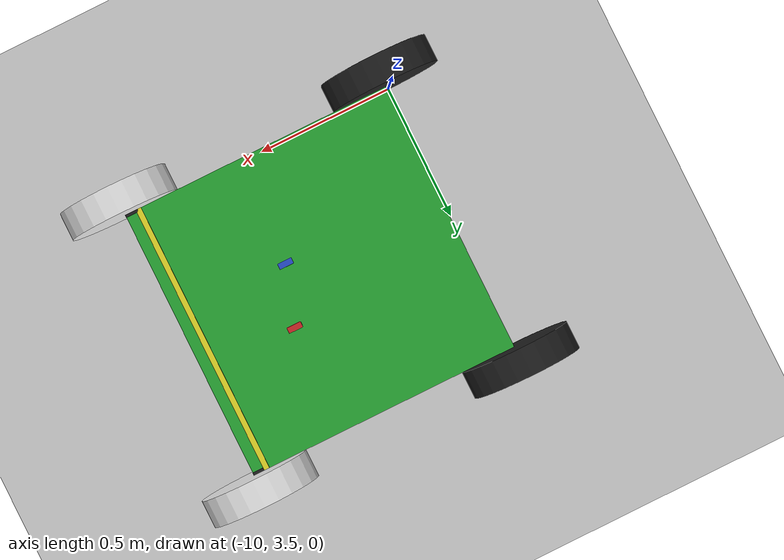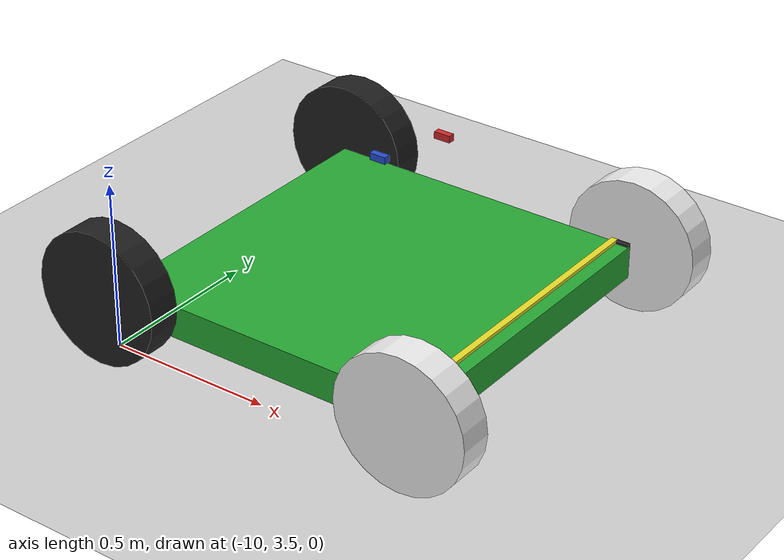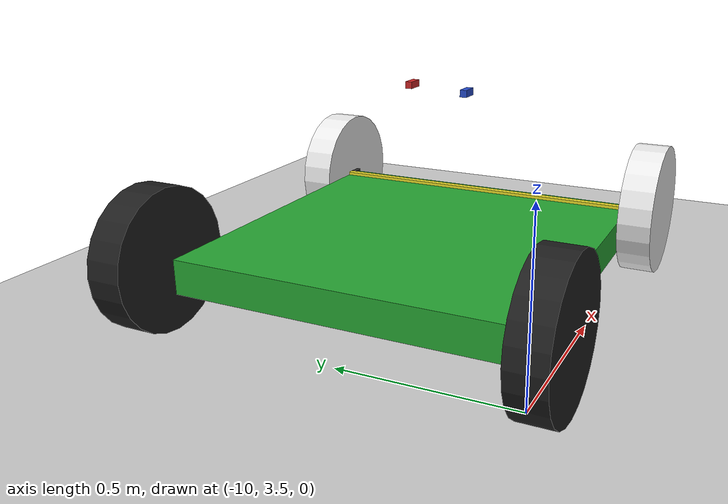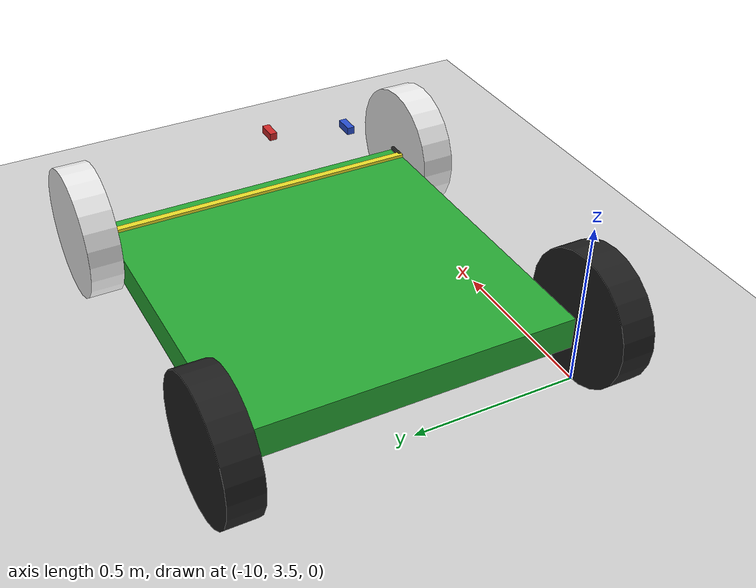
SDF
<sdf version="1.4">
 <world name="cart_demo">
  <physics type="ode">
   <gravity>0 0 -9.8</gravity>
   <max_step_size>0.001</max_step_size>
   <real_time_factor>10</real_time_factor>
   <real_time_update_rate>1000</real_time_update_rate>
   <ode>
    <solver><type>quick</type><iters>50</iters><sor>1.3</sor></solver>
    <constraints>
     <cfm>0</cfm>
     <erp>0.2</erp>
     <contact_max_correcting_vel>100</contact_max_correcting_vel>
     <contact_surface_layer>0.001</contact_surface_layer>
    </constraints>
   </ode>
   <max_step_size>0.001</max_step_size>
  </physics>
  <light name="sun" type="directional">
   <pose>0 0 20 0 -0 0</pose>
   <diffuse>0.8 0.8 0.8 1</diffuse>
   <specular>0.1 0.1 0.1 1</specular>
   <attenuation>
    <range>10</range>
    <linear>0.01</linear>
    <constant>0.8</constant>
    <quadratic>0</quadratic>
   </attenuation>
   <direction>0 0.5 -0.5</direction>
  </light>
  <model name="ground_plane">
   <static>1</static>
   <link name="link">
    <collision name="collision">
     <geometry><plane><normal>0 0 1</normal><size>100 100</size></plane></geometry>
     <surface><friction><ode><mu>100</mu><mu2>50</mu2></ode></friction></surface>
    </collision>
    <visual name="visual">
     <cast_shadows>0</cast_shadows>
     <geometry><plane><normal>0 0 1</normal><size>500 500</size></plane></geometry>
     <material>
      <script><uri>file://media/materials/scripts/gazebo.material</uri><name>Gazebo/Grey</name></script>
     </material>
    </visual>
    <velocity_decay><linear>0</linear><angular>0</angular></velocity_decay>
   </link>
  </model>
  <scene><ambient>0.4 0.4 0.4 1</ambient><background>0.7 0.7 0.7 1</background><shadows>1</shadows></scene>
  <spherical_coordinates>
   <surface_model>EARTH_WGS84</surface_model>
   <latitude_deg>0</latitude_deg>
   <longitude_deg>0</longitude_deg>
   <elevation>0</elevation>
   <heading_deg>0</heading_deg>
  </spherical_coordinates>
  <light name="sun_0" type="directional">
   <pose>13 -2 10 0 -0 0</pose>
   <diffuse>0.8 0.8 0.8 1</diffuse>
   <specular>0.2 0.2 0.2 1</specular>
   <attenuation>
    <range>1000</range>
    <constant>0.9</constant>
    <linear>0.01</linear>
    <quadratic>0.001</quadratic>
   </attenuation>
   <direction>-0.5 0.1 -0.9</direction>
  </light>
  <model name="test_model">
   <pose>-9.48238 4.00006 0.69999 -6e-06 6e-06 -0.00163</pose>
   <link name="link">
    <inertial>
     <inertia><ixx>1</ixx><ixy>0</ixy><ixz>0</ixz><iyy>1</iyy><iyz>0</iyz><izz>1</izz></inertia>
     <mass>600</mass>
    </inertial>
    <collision name="collision">
     <geometry><box><size>1 1 0.1</size></box></geometry>
     <surface>
      <friction><ode><mu>1</mu><mu2>1</mu2></ode></friction>
      <contact><ode><max_vel>100</max_vel></ode></contact>
     </surface>
    </collision>
    <visual name="visual">
     <pose>0 0 -0.55 0 -0 0</pose>
     <geometry><box><size>1 1 0.1</size></box></geometry>
     <material>
      <script><uri>file://media/materials/scripts/gazebo.material</uri><name>Gazebo/Green</name></script>
     </material>
    </visual>
    <velocity_decay><linear>0</linear><angular>0</angular></velocity_decay>
   </link>
   <link name="bar_1">
    <pose>0.45 0 -0.5 0 -0 0</pose>
    <inertial>
     <inertia><ixx>0.001</ixx><ixy>0</ixy><ixz>0</ixz><iyy>0.001</iyy><iyz>0</iyz><izz>0.001</izz></inertia>
     <mass>0.1</mass>
    </inertial>
    <collision name="collision">
     <geometry><box><size>0.06 1 0.02</size></box></geometry>
     <surface>
      <friction><ode><mu>1</mu><mu2>1</mu2></ode></friction>
      <contact><ode><max_vel>100</max_vel></ode></contact>
     </surface>
    </collision>
    <visual name="visual">
     <geometry><box><size>0.02 1 0.02</size></box></geometry>
     <material>
      <script><uri>file://media/materials/scripts/gazebo.material</uri><name>Gazebo/Yellow</name></script>
     </material>
    </visual>
    <velocity_decay><linear>0</linear><angular>0</angular></velocity_decay>
   </link>
   <joint name="bar_12_joint" type="revolute">
    <parent>bar_2</parent>
    <child>bar_1</child>
    <pose>0 0.5 0 0 -0 0</pose>
    <axis><xyz>0 0 1</xyz><limit><lower>-1e+16</lower><upper>1e+16</upper></limit></axis>
   </joint>
   <joint name="bar_13_joint" type="revolute">
    <parent>bar_3</parent>
    <child>bar_1</child>
    <pose>0 -0.5 0 0 -0 0</pose>
    <axis><xyz>0 0 1</xyz><limit><lower>-1e+16</lower><upper>1e+16</upper></limit></axis>
   </joint>
   <link name="bar_2">
    <pose>0.5 0.5 -0.5 0 -0 0</pose>
    <inertial>
     <inertia><ixx>0.001</ixx><ixy>0</ixy><ixz>0</ixz><iyy>0.001</iyy><iyz>0</iyz><izz>0.001</izz></inertia>
     <mass>0.1</mass>
    </inertial>
    <collision name="collision">
     <pose>-0.025 0 0 0 -0 0</pose>
     <geometry><box><size>0.08 0.05 0.05</size></box></geometry>
     <surface>
      <friction><ode><mu>1</mu><mu2>1</mu2></ode></friction>
      <contact><ode><max_vel>100</max_vel></ode></contact>
     </surface>
    </collision>
    <visual name="visual">
     <pose>-0.025 0 0 0 -0 0</pose>
     <geometry><box><size>0.05 0.02 0.02</size></box></geometry>
     <material>
      <script><uri>file://media/materials/scripts/gazebo.material</uri><name>Gazebo/Black</name></script>
     </material>
    </visual>
    <velocity_decay><linear>0</linear><angular>0</angular></velocity_decay>
   </link>
   <joint name="bar_2_joint" type="revolute">
    <parent>link</parent>
    <child>bar_2</child>
    <axis><xyz>0 0 1</xyz><limit><lower>-7.853</lower><upper>7.853</upper></limit></axis>
   </joint>
   <link name="bar_3">
    <pose>0.5 -0.5 -0.5 0 -0 0</pose>
    <inertial>
     <inertia><ixx>0.001</ixx><ixy>0</ixy><ixz>0</ixz><iyy>0.001</iyy><iyz>0</iyz><izz>0.001</izz></inertia>
     <mass>0.1</mass>
    </inertial>
    <collision name="collision">
     <pose>-0.025 0 0 0 -0 0</pose>
     <geometry><box><size>0.05 0.02 0.02</size></box></geometry>
     <surface>
      <friction><ode><mu>1</mu><mu2>1</mu2></ode></friction>
      <contact><ode><max_vel>100</max_vel></ode></contact>
     </surface>
    </collision>
    <visual name="visual">
     <pose>-0.025 0 0 0 -0 0</pose>
     <geometry><box><size>0.05 0.02 0.02</size></box></geometry>
     <material>
      <script><uri>file://media/materials/scripts/gazebo.material</uri><name>Gazebo/Black</name></script>
     </material>
    </visual>
    <velocity_decay><linear>0</linear><angular>0</angular></velocity_decay>
   </link>
   <joint name="bar_3_joint" type="revolute">
    <parent>link</parent>
    <child>bar_3</child>
    <axis><xyz>0 0 1</xyz><limit><lower>-1e+16</lower><upper>1e+16</upper></limit></axis>
   </joint>
   <link name="wheel_1">
    <pose>0.5 0.55 -0.5 1.5708 -0 0</pose>
    <inertial>
     <inertia><ixx>0.01</ixx><ixy>0</ixy><ixz>0</ixz><iyy>0.01</iyy><iyz>0</iyz><izz>0.01</izz></inertia>
     <mass>100</mass>
    </inertial>
    <collision name="collision">
     <geometry><cylinder><radius>0.2</radius><length>0.1</length></cylinder></geometry>
     <surface>
      <friction><ode><fdir1>1 0 0</fdir1><mu>1</mu><mu2>1</mu2></ode></friction>
      <contact><ode><max_vel>100</max_vel></ode></contact>
     </surface>
    </collision>
    <visual name="visual">
     <geometry><cylinder><radius>0.2</radius><length>0.1</length></cylinder></geometry>
     <material>
      <script><uri>file://media/materials/scripts/gazebo.material</uri><name>Gazebo/White</name></script>
     </material>
    </visual>
    <velocity_decay><linear>0</linear><angular>0</angular></velocity_decay>
   </link>
   <joint name="wheel_1_joint" type="revolute">
    <parent>bar_2</parent>
    <child>wheel_1</child>
    <axis><xyz>0 1 0</xyz><limit><lower>-1e+16</lower><upper>1e+16</upper></limit></axis>
   </joint>
   <link name="wheel_2">
    <pose>0.5 -0.55 -0.5 1.5708 -0 0</pose>
    <inertial>
     <inertia><ixx>0.01</ixx><ixy>0</ixy><ixz>0</ixz><iyy>0.01</iyy><iyz>0</iyz><izz>0.01</izz></inertia>
     <mass>100</mass>
    </inertial>
    <collision name="collision">
     <geometry><cylinder><radius>0.2</radius><length>0.1</length></cylinder></geometry>
     <surface>
      <friction><ode><fdir1>1 0 0</fdir1><mu>1</mu><mu2>1</mu2></ode></friction>
      <contact><ode><max_vel>100</max_vel></ode></contact>
     </surface>
    </collision>
    <visual name="visual">
     <geometry><cylinder><radius>0.2</radius><length>0.1</length></cylinder></geometry>
     <material>
      <script><uri>file://media/materials/scripts/gazebo.material</uri><name>Gazebo/White</name></script>
     </material>
    </visual>
    <velocity_decay><linear>0</linear><angular>0</angular></velocity_decay>
   </link>
   <joint name="wheel_2_joint" type="revolute">
    <parent>bar_3</parent>
    <child>wheel_2</child>
    <axis><xyz>0 1 0</xyz><limit><lower>-1e+16</lower><upper>1e+16</upper></limit></axis>
   </joint>
   <link name="wheel_3">
    <pose>-0.5 0.55 -0.5 1.5708 -0 0</pose>
    <inertial>
     <inertia><ixx>0.01</ixx><ixy>0</ixy><ixz>0</ixz><iyy>0.01</iyy><iyz>0</iyz><izz>0.01</izz></inertia>
     <mass>100</mass>
    </inertial>
    <collision name="collision">
     <geometry><cylinder><radius>0.2</radius><length>0.1</length></cylinder></geometry>
     <surface>
      <friction><ode><fdir1>1 0 0</fdir1><mu>1</mu><mu2>1</mu2></ode></friction>
      <contact><ode><max_vel>100</max_vel></ode></contact>
     </surface>
    </collision>
    <visual name="visual">
     <geometry><cylinder><radius>0.2</radius><length>0.1</length></cylinder></geometry>
     <material>
      <script><uri>file://media/materials/scripts/gazebo.material</uri><name>Gazebo/Black</name></script>
     </material>
    </visual>
    <velocity_decay><linear>0</linear><angular>0</angular></velocity_decay>
   </link>
   <joint name="wheel_3_joint" type="revolute">
    <parent>link</parent>
    <child>wheel_3</child>
    <axis>
     <dynamics><damping>0</damping><friction>0</friction></dynamics>
     <xyz>0 1 0</xyz>
     <limit><lower>-1e+16</lower><upper>1e+16</upper></limit>
    </axis>
   </joint>
   <link name="wheel_4">
    <pose>-0.5 -0.55 -0.5 1.5708 -0 0</pose>
    <inertial>
     <inertia><ixx>0.01</ixx><ixy>0</ixy><ixz>0</ixz><iyy>0.01</iyy><iyz>0</iyz><izz>0.01</izz></inertia>
     <mass>100</mass>
    </inertial>
    <collision name="collision">
     <geometry><cylinder><radius>0.2</radius><length>0.1</length></cylinder></geometry>
     <surface>
      <friction><ode><fdir1>1 0 0</fdir1><mu>1</mu><mu2>1</mu2></ode></friction>
      <contact><ode><max_vel>100</max_vel></ode></contact>
     </surface>
    </collision>
    <visual name="visual">
     <geometry><cylinder><radius>0.2</radius><length>0.1</length></cylinder></geometry>
     <material>
      <script><uri>file://media/materials/scripts/gazebo.material</uri><name>Gazebo/Black</name></script>
     </material>
    </visual>
    <velocity_decay><linear>0</linear><angular>0</angular></velocity_decay>
   </link>
   <joint name="wheel_4_joint" type="revolute">
    <parent>link</parent>
    <child>wheel_4</child>
    <axis>
     <dynamics><damping>0</damping><friction>0</friction></dynamics>
     <xyz>0 1 0</xyz>
     <limit><lower>-1e+16</lower><upper>1e+16</upper></limit>
    </axis>
   </joint>
   <link name="gas_pedal">
    <pose>0.1 -0.1 -0.1 0 -0 0</pose>
    <inertial>
     <inertia><ixx>0.001</ixx><ixy>0</ixy><ixz>0</ixz><iyy>0.001</iyy><iyz>0</iyz><izz>0.001</izz></inertia>
     <mass>0.1</mass>
    </inertial>
    <collision name="collision">
     <pose>0.04 0 0 0 -0 0</pose>
     <geometry><box><size>0.05 0.02 0.02</size></box></geometry>
     <surface>
      <friction><ode><mu>1</mu><mu2>1</mu2></ode></friction>
      <contact><ode><max_vel>100</max_vel></ode></contact>
     </surface>
    </collision>
    <visual name="visual">
     <pose>-0.025 0 0 0 -0 0</pose>
     <geometry><box><size>0.05 0.02 0.02</size></box></geometry>
     <material>
      <script><uri>file://media/materials/scripts/gazebo.material</uri><name>Gazebo/Blue</name></script>
     </material>
    </visual>
    <velocity_decay><linear>0</linear><angular>0</angular></velocity_decay>
   </link>
   <joint name="gas_joint" type="prismatic">
    <parent>link</parent>
    <child>gas_pedal</child>
    <axis><xyz>1 0 0</xyz><limit><lower>0</lower><upper>0.2</upper></limit></axis>
   </joint>
   <link name="brake_pedal">
    <pose>0.1 0.1 -0.1 0 -0 0</pose>
    <inertial>
     <inertia><ixx>0.001</ixx><ixy>0</ixy><ixz>0</ixz><iyy>0.001</iyy><iyz>0</iyz><izz>0.001</izz></inertia>
     <mass>0.1</mass>
    </inertial>
    <collision name="collision">
     <pose>0.04 0 0 0 -0 0</pose>
     <geometry><box><size>0.05 0.02 0.02</size></box></geometry>
     <surface>
      <friction><ode><mu>1</mu><mu2>1</mu2></ode></friction>
      <contact><ode><max_vel>100</max_vel></ode></contact>
     </surface>
    </collision>
    <visual name="visual">
     <pose>0.04 0 0 0 -0 0</pose>
     <geometry><box><size>0.05 0.02 0.02</size></box></geometry>
     <material>
      <script><uri>file://media/materials/scripts/gazebo.material</uri><name>Gazebo/Red</name></script>
     </material>
    </visual>
    <velocity_decay><linear>0</linear><angular>0</angular></velocity_decay>
   </link>
   <joint name="brake_joint" type="prismatic">
    <parent>link</parent>
    <child>brake_pedal</child>
    <axis><xyz>1 0 0</xyz><limit><lower>0</lower><upper>0.2</upper></limit></axis>
   </joint>
   <plugin name="cart_test_plugin" filename="libCartDemoPlugin.so">
    <steer>bar_2_joint</steer>
    <steer_pid>10 0.1 0.5</steer_pid>
    <steer_ilim>-10 10</steer_ilim>
    <steer_pos>0.0</steer_pos>
    <steer_vel>0</steer_vel>
    <steer_eff>100.0</steer_eff>
    <right>wheel_3_joint</right>
    <right_pid>0.1 0.0 0.001</right_pid>
    <right_ilim>-.1 .1</right_ilim>
    <right_pos>0</right_pos>
    <right_vel>0</right_vel>
    <right_eff>0.1</right_eff>
    <left>wheel_4_joint</left>
    <left_pid>0.1 0.0 0.001</left_pid>
    <left_ilim>-.1 .1</left_ilim>
    <left_pos>0</left_pos>
    <left_vel>0</left_vel>
    <left_eff>0.1</left_eff>
    <gas>gas_joint</gas>
    <gas_pid>12 2 0</gas_pid>
    <gas_ilim>-3 3</gas_ilim>
    <brake>brake_joint</brake>
    <brake_pid>-10.129 -1.02 0</brake_pid>
    <brake_ilim>-3 .3</brake_ilim>
    <front_right>wheel_1_joint</front_right>
    <front_left>wheel_2_joint</front_left>
    <front_power>10</front_power>
    <rear_power>10</rear_power>
    <tire_angle_range>0.5</tire_angle_range>
    <max_speed>10</max_speed>
    <aero_load>0.1</aero_load>
   </plugin>
   <static>0</static>
  </model>
 </world>
</sdf>
